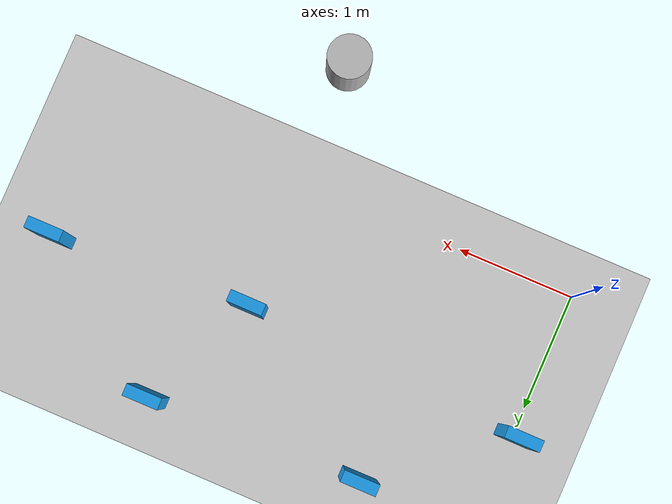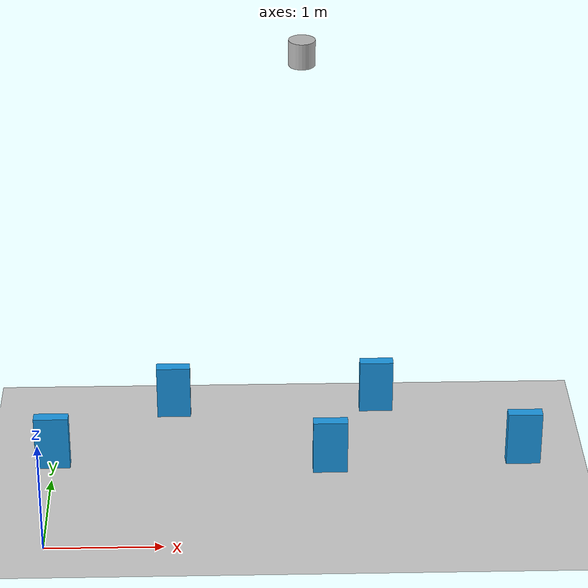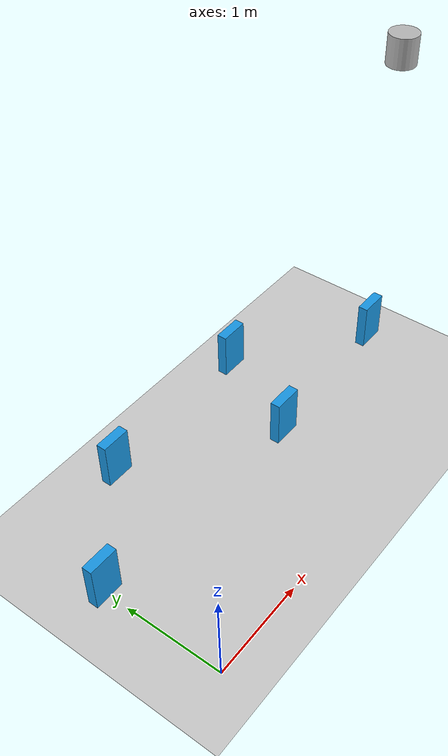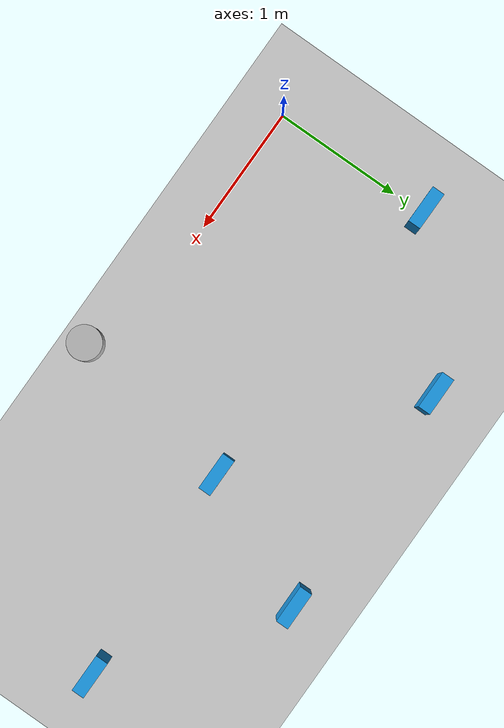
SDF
<sdf version="1.7">
 <world name="default">
  <light name="sun" type="directional">
   <pose>0 0 10 0 -0 0</pose>
   <diffuse>0.8 0.8 0.8 1</diffuse>
   <specular>0.2 0.2 0.2 1</specular>
   <attenuation>
    <range>1000</range>
    <constant>0.9</constant>
    <linear>0.01</linear>
    <quadratic>0.001</quadratic>
   </attenuation>
   <direction>-0.5 0.1 -0.9</direction>
   <spot><inner_angle>0</inner_angle><outer_angle>0</outer_angle><falloff>0</falloff></spot>
  </light>
  <model name="ground_plane">
   <static>1</static>
   <link name="link">
    <collision name="collision">
     <geometry><plane><normal>0 0 1</normal><size>100 100</size></plane></geometry>
     <surface>
      <contact><collide_bitmask>65535</collide_bitmask></contact>
      <friction><ode><mu>100</mu><mu2>50</mu2></ode></friction>
     </surface>
    </collision>
    <visual name="visual">
     <cast_shadows>0</cast_shadows>
     <geometry><plane><normal>0 0 1</normal><size>100 100</size></plane></geometry>
     <material>
      <script><uri>file://media/materials/scripts/gazebo.material</uri><name>Gazebo/Grey</name></script>
     </material>
    </visual>
   </link>
  </model>
  <gravity>0 0 -9.8</gravity>
  <magnetic_field>6e-06 2.3e-05 -4.2e-05</magnetic_field>
  <atmosphere type="adiabatic"/>
  <physics type="ode">
   <max_step_size>0.001</max_step_size>
   <real_time_factor>1</real_time_factor>
   <real_time_update_rate>1000</real_time_update_rate>
  </physics>
  <scene><ambient>0.4 0.4 0.4 1</ambient><background>0.7 0.7 0.7 1</background><shadows>1</shadows></scene>
  <spherical_coordinates>
   <surface_model>EARTH_WGS84</surface_model>
   <latitude_deg>0</latitude_deg>
   <longitude_deg>0</longitude_deg>
   <elevation>0</elevation>
   <heading_deg>0</heading_deg>
  </spherical_coordinates>
  <model name="domino">
   <static>0</static>
   <link name="base">
    <inertial>
     <pose>0 0 0.09 0 -0 0</pose>
     <mass>1.8</mass>
     <inertia><ixx>0.108</ixx><ixy>0</ixy><ixz>0</ixz><iyy>0.108</iyy><iyz>0</iyz><izz>0.054</izz></inertia>
    </inertial>
    <visual name="visual_base_link">
     <geometry><box><size>0.3 0.1 0.5</size></box><scale>1 1 1</scale></geometry>
     <material>
      <ambient>0.1 0.6 0.9 1</ambient>
      <diffuse>0.1 0.6 0.9 1</diffuse>
      <specular>0.1 0.6 0.9 1</specular>
      <emissive>0.1 0.6 0.9 0</emissive>
     </material>
    </visual>
    <collision name="collision_base_link">
     <geometry><box><size>0.1 0.2 0.5</size></box><scale>1 1 1</scale></geometry>
    </collision>
   </link>
   <pose>-0.000469 1.24863 0.25 2e-06 0 -0.002651</pose>
  </model>
  <model name="domino_0">
   <static>0</static>
   <link name="base">
    <inertial>
     <pose>0 0 0.09 0 -0 0</pose>
     <mass>1.8</mass>
     <inertia><ixx>0.108</ixx><ixy>0</ixy><ixz>0</ixz><iyy>0.108</iyy><iyz>0</iyz><izz>0.054</izz></inertia>
    </inertial>
    <visual name="visual_base_link">
     <geometry><box><size>0.3 0.1 0.5</size></box><scale>1 1 1</scale></geometry>
     <material>
      <ambient>0.1 0.6 0.9 1</ambient>
      <diffuse>0.1 0.6 0.9 1</diffuse>
      <specular>0.1 0.6 0.9 1</specular>
      <emissive>0.1 0.6 0.9 0</emissive>
     </material>
    </visual>
    <collision name="collision_base_link">
     <geometry><box><size>0.1 0.2 0.5</size></box><scale>1 1 1</scale></geometry>
    </collision>
   </link>
   <pose>2.41754 1.12707 0.25 -3e-06 -0 -7.8e-05</pose>
  </model>
  <model name="domino_2">
   <static>0</static>
   <link name="base">
    <inertial>
     <pose>0 0 0.09 0 -0 0</pose>
     <mass>1.8</mass>
     <inertia><ixx>0.108</ixx><ixy>0</ixy><ixz>0</ixz><iyy>0.108</iyy><iyz>0</iyz><izz>0.054</izz></inertia>
    </inertial>
    <visual name="visual_base_link">
     <geometry><box><size>0.3 0.1 0.5</size></box><scale>1 1 1</scale></geometry>
     <material>
      <ambient>0.1 0.6 0.9 1</ambient>
      <diffuse>0.1 0.6 0.9 1</diffuse>
      <specular>0.1 0.6 0.9 1</specular>
      <emissive>0.1 0.6 0.9 0</emissive>
     </material>
    </visual>
    <collision name="collision_base_link">
     <geometry><box><size>0.1 0.2 0.5</size></box><scale>1 1 1</scale></geometry>
    </collision>
   </link>
   <pose>1.04073 2.07016 0.249999 6e-06 -1e-06 0.003617</pose>
  </model>
  <model name="domino_4">
   <static>0</static>
   <link name="base">
    <inertial>
     <pose>0 0 0.09 0 -0 0</pose>
     <mass>1.8</mass>
     <inertia><ixx>0.108</ixx><ixy>0</ixy><ixz>0</ixz><iyy>0.108</iyy><iyz>0</iyz><izz>0.054</izz></inertia>
    </inertial>
    <visual name="visual_base_link">
     <geometry><box><size>0.3 0.1 0.5</size></box><scale>1 1 1</scale></geometry>
     <material>
      <ambient>0.1 0.6 0.9 1</ambient>
      <diffuse>0.1 0.6 0.9 1</diffuse>
      <specular>0.1 0.6 0.9 1</specular>
      <emissive>0.1 0.6 0.9 0</emissive>
     </material>
    </visual>
    <collision name="collision_base_link">
     <geometry><box><size>0.1 0.2 0.5</size></box><scale>1 1 1</scale></geometry>
    </collision>
   </link>
   <pose>2.87185 2.12582 0.25 -2e-06 -0 0.003982</pose>
  </model>
  <model name="domino_5">
   <static>0</static>
   <link name="base">
    <inertial>
     <pose>0 0 0.09 0 -0 0</pose>
     <mass>1.8</mass>
     <inertia><ixx>0.108</ixx><ixy>0</ixy><ixz>0</ixz><iyy>0.108</iyy><iyz>0</iyz><izz>0.054</izz></inertia>
    </inertial>
    <visual name="visual_base_link">
     <geometry><box><size>0.3 0.1 0.5</size></box><scale>1 1 1</scale></geometry>
     <material>
      <ambient>0.1 0.6 0.9 1</ambient>
      <diffuse>0.1 0.6 0.9 1</diffuse>
      <specular>0.1 0.6 0.9 1</specular>
      <emissive>0.1 0.6 0.9 0</emissive>
     </material>
    </visual>
    <collision name="collision_base_link">
     <geometry><box><size>0.1 0.2 0.5</size></box><scale>1 1 1</scale></geometry>
    </collision>
   </link>
   <pose>4.11231 1.22327 0.25 -3e-06 -0 0.001801</pose>
  </model>
  <model name="domino_6">
   <static>1</static>
   <link name="base_light">
    <inertial>
     <pose>0 0 0.09 0 -0 0</pose>
     <mass>1.8</mass>
     <inertia><ixx>0.108</ixx><ixy>0</ixy><ixz>0</ixz><iyy>0.108</iyy><iyz>0</iyz><izz>0.054</izz></inertia>
    </inertial>
    <visual name="visual">
     <geometry><cylinder><length>0.2</length><radius>0.1</radius></cylinder></geometry>
    </visual>
    <light name="lighter" type="spot">
     <diffuse>0.5 0.5 0.5 1</diffuse>
     <specular>0.1 0.1 0.1 1</specular>
     <direction>0 0 -1</direction>
     <attenuation>
      <range>500</range>
      <constant>0.1</constant>
      <linear>0.01</linear>
      <quadratic>0.001</quadratic>
     </attenuation>
     <cast_shadows>0</cast_shadows>
     <spot><inner_angle>0.6</inner_angle><outer_angle>1</outer_angle><falloff>1</falloff></spot>
    </light>
   </link>
   <plugin name="light_control_plugin" filename="liblight_control_plugin.so"/>
   <pose>2.12838 0.147391 4.33967 0 -0 0</pose>
  </model>
 </world>
</sdf>
